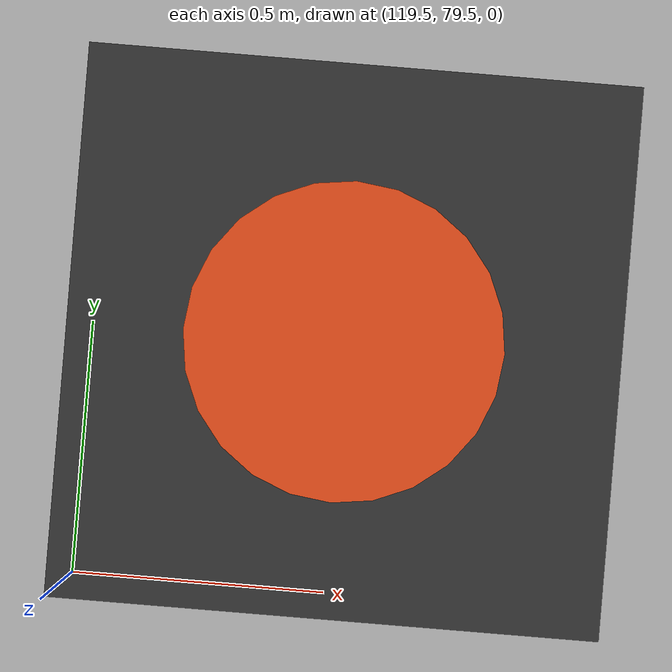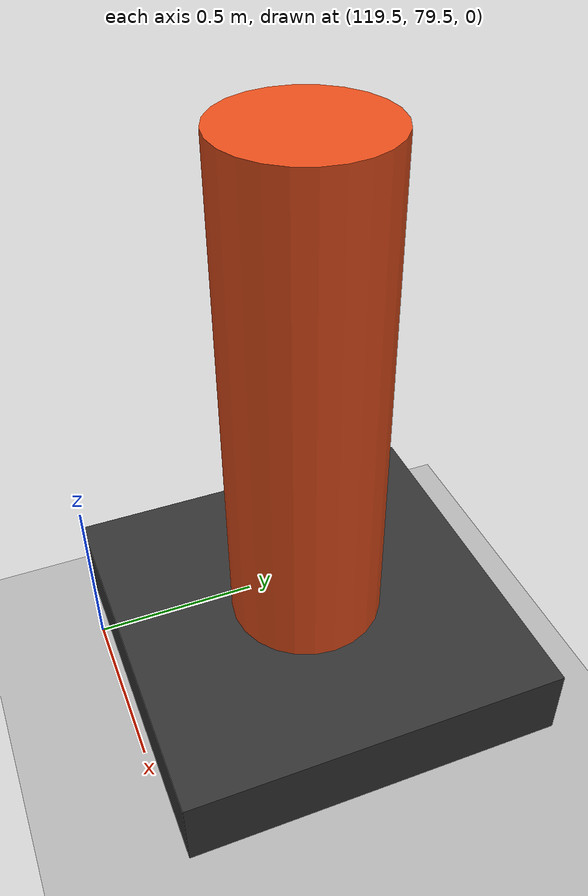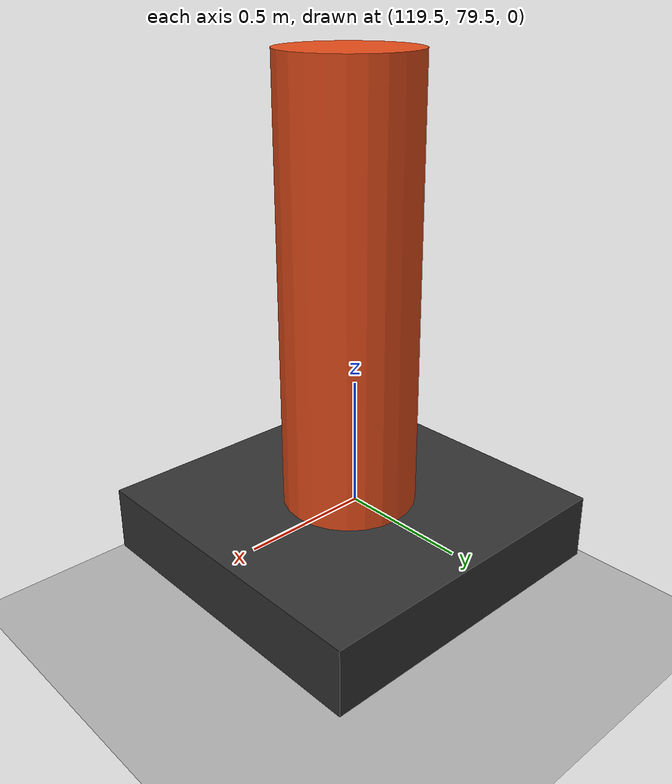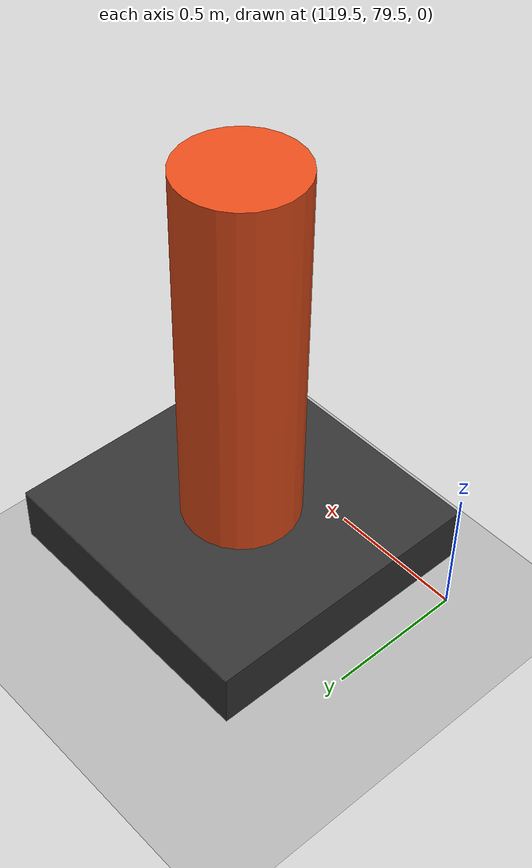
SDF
<?xml version="1.0" ?>
<sdf version="1.7">
  <world name="fox_hunt_world">
    <gravity>0 0 -9.8</gravity>
    <plugin
      filename="gz-sim-physics-system"
      name="gz::sim::systems::Physics">
    </plugin>
    <plugin
      filename="gz-sim-user-commands-system"
      name="gz::sim::systems::UserCommands">
    </plugin>
    <plugin
      filename="gz-sim-scene-broadcaster-system"
      name="gz::sim::systems::SceneBroadcaster">
    </plugin>
    <light type="directional" name="sun">
      <cast_shadows>true</cast_shadows>
      <pose>0 0 10 0 0 0</pose>
      <diffuse>0.8 0.8 0.8 1</diffuse>
      <specular>0.2 0.2 0.2 1</specular>
      <direction>-0.4 0.2 -1</direction>
    </light>
    <model name="ground_plane">
      <static>true</static>
      <link name="ground_link">
        <collision name="collision">
          <geometry>
            <plane>
              <normal>0 0 1</normal>
              <size>400 400</size>
            </plane>
          </geometry>
        </collision>
        <visual name="visual">
          <geometry>
            <plane>
              <normal>0 0 1</normal>
              <size>400 400</size>
            </plane>
          </geometry>
          <material>
            <ambient>0.7 0.7 0.7 1</ambient>
            <diffuse>0.7 0.7 0.7 1</diffuse>
          </material>
        </visual>
      </link>
    </model>
    <include>
      <uri>model://fox_beacon</uri>
      <pose>120 80 0.25 0 0 0</pose>
    </include>
  </world>
</sdf>

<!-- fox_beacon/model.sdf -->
<sdf version="1.7">
  <model name="fox_beacon">
    <static>true</static>
    <link name="body">
      <visual name="mast">
        <geometry>
          <cylinder>
            <radius>0.2</radius>
            <length>1.5</length>
          </cylinder>
        </geometry>
        <pose>0 0 0.75 0 0 0</pose>
        <material>
          <ambient>0.9 0.3 0.1 1</ambient>
          <diffuse>0.9 0.3 0.1 1</diffuse>
        </material>
      </visual>
      <visual name="base">
        <geometry>
          <box>
            <size>1 1 0.2</size>
          </box>
        </geometry>
        <pose>0 0 0.1 0 0 0</pose>
        <material>
          <ambient>0.2 0.2 0.2 1</ambient>
          <diffuse>0.2 0.2 0.2 1</diffuse>
        </material>
      </visual>
    </link>
  </model>
</sdf>
